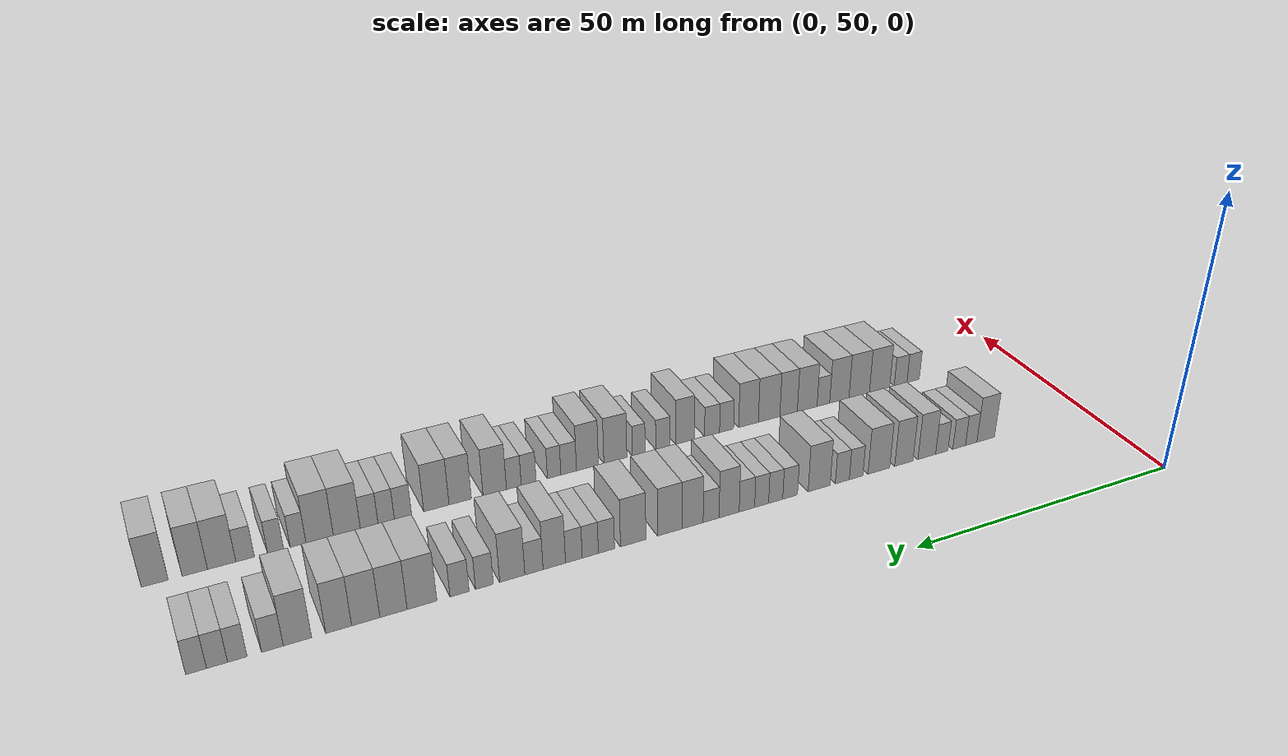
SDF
<sdf version="1.6">
 <world name="default">
  <model name="building_74">
   <static>1</static>
   <pose>25.0000 72.0073 0 0.000000 0.000000 0.000000</pose>
   <link name="link">
    <pose>0 0 4.50 0 0 0</pose>
    <collision name="collision"><geometry><box><size>10.0000 3.7636 9.0000</size></box></geometry></collision>
    <visual name="visual">
     <cast_shadows>0</cast_shadows>
     <geometry><box><size>10.0000 3.7636 9.0000</size></box></geometry>
     <material>
      <script>
       <uri>model://HANNAS_wall/materials/scripts</uri>
       <uri>model://HANNAS_wall/materials/textures</uri>
       <name>vrc/HANNAS_wall</name>
      </script>
     </material>
    </visual>
   </link>
  </model>
  <model name="building_75">
   <static>1</static>
   <pose>25.0000 75.0960 0 0.000000 0.000000 0.000000</pose>
   <link name="link">
    <pose>0 0 3.00 0 0 0</pose>
    <collision name="collision"><geometry><box><size>10.0000 2.4137 6.0000</size></box></geometry></collision>
    <visual name="visual">
     <cast_shadows>0</cast_shadows>
     <geometry><box><size>10.0000 2.4137 6.0000</size></box></geometry>
     <material>
      <script>
       <uri>model://HANNAS_wall/materials/scripts</uri>
       <uri>model://HANNAS_wall/materials/textures</uri>
       <name>vrc/HANNAS_wall</name>
      </script>
     </material>
    </visual>
   </link>
  </model>
  <model name="building_76">
   <static>1</static>
   <pose>25.0000 77.6367 0 0.000000 0.000000 0.000000</pose>
   <link name="link">
    <pose>0 0 3.00 0 0 0</pose>
    <collision name="collision"><geometry><box><size>10.0000 2.6678 6.0000</size></box></geometry></collision>
    <visual name="visual">
     <cast_shadows>0</cast_shadows>
     <geometry><box><size>10.0000 2.6678 6.0000</size></box></geometry>
     <material>
      <script>
       <uri>model://HANNAS_wall/materials/scripts</uri>
       <uri>model://HANNAS_wall/materials/textures</uri>
       <name>vrc/HANNAS_wall</name>
      </script>
     </material>
    </visual>
   </link>
  </model>
  <model name="building_77">
   <static>1</static>
   <pose>25.0000 81.2467 0 0.000000 0.000000 0.000000</pose>
   <link name="link">
    <pose>0 0 3.00 0 0 0</pose>
    <collision name="collision"><geometry><box><size>10.0000 2.5522 6.0000</size></box></geometry></collision>
    <visual name="visual">
     <cast_shadows>0</cast_shadows>
     <geometry><box><size>10.0000 2.5522 6.0000</size></box></geometry>
     <material>
      <script>
       <uri>model://HANNAS_wall/materials/scripts</uri>
       <uri>model://HANNAS_wall/materials/textures</uri>
       <name>vrc/HANNAS_wall</name>
      </script>
     </material>
    </visual>
   </link>
  </model>
  <model name="building_78">
   <static>1</static>
   <pose>25.0000 84.3464 0 0.000000 0.000000 0.000000</pose>
   <link name="link">
    <pose>0 0 4.50 0 0 0</pose>
    <collision name="collision"><geometry><box><size>10.0000 3.6470 9.0000</size></box></geometry></collision>
    <visual name="visual">
     <cast_shadows>0</cast_shadows>
     <geometry><box><size>10.0000 3.6470 9.0000</size></box></geometry>
     <material>
      <script>
       <uri>model://HANNAS_wall/materials/scripts</uri>
       <uri>model://HANNAS_wall/materials/textures</uri>
       <name>vrc/HANNAS_wall</name>
      </script>
     </material>
    </visual>
   </link>
  </model>
  <model name="building_79">
   <static>1</static>
   <pose>25.0000 89.0139 0 0.000000 0.000000 0.000000</pose>
   <link name="link">
    <pose>0 0 4.50 0 0 0</pose>
    <collision name="collision"><geometry><box><size>10.0000 3.6879 9.0000</size></box></geometry></collision>
    <visual name="visual">
     <cast_shadows>0</cast_shadows>
     <geometry><box><size>10.0000 3.6879 9.0000</size></box></geometry>
     <material>
      <script>
       <uri>model://HANNAS_wall/materials/scripts</uri>
       <uri>model://HANNAS_wall/materials/textures</uri>
       <name>vrc/HANNAS_wall</name>
      </script>
     </material>
    </visual>
   </link>
  </model>
  <model name="building_80">
   <static>1</static>
   <pose>25.0000 94.0215 0 0.000000 0.000000 0.000000</pose>
   <link name="link">
    <pose>0 0 4.50 0 0 0</pose>
    <collision name="collision"><geometry><box><size>10.0000 4.3273 9.0000</size></box></geometry></collision>
    <visual name="visual">
     <cast_shadows>0</cast_shadows>
     <geometry><box><size>10.0000 4.3273 9.0000</size></box></geometry>
     <material>
      <script>
       <uri>model://HANNAS_wall/materials/scripts</uri>
       <uri>model://HANNAS_wall/materials/textures</uri>
       <name>vrc/HANNAS_wall</name>
      </script>
     </material>
    </visual>
   </link>
  </model>
  <model name="building_81">
   <static>1</static>
   <pose>25.0000 98.5143 0 0.000000 0.000000 0.000000</pose>
   <link name="link">
    <pose>0 0 3.00 0 0 0</pose>
    <collision name="collision"><geometry><box><size>10.0000 2.6583 6.0000</size></box></geometry></collision>
    <visual name="visual">
     <cast_shadows>0</cast_shadows>
     <geometry><box><size>10.0000 2.6583 6.0000</size></box></geometry>
     <material>
      <script>
       <uri>model://HANNAS_wall/materials/scripts</uri>
       <uri>model://HANNAS_wall/materials/textures</uri>
       <name>vrc/HANNAS_wall</name>
      </script>
     </material>
    </visual>
   </link>
  </model>
  <model name="building_82">
   <static>1</static>
   <pose>25.0000 101.2022 0 0.000000 0.000000 0.000000</pose>
   <link name="link">
    <pose>0 0 3.00 0 0 0</pose>
    <collision name="collision"><geometry><box><size>10.0000 2.7175 6.0000</size></box></geometry></collision>
    <visual name="visual">
     <cast_shadows>0</cast_shadows>
     <geometry><box><size>10.0000 2.7175 6.0000</size></box></geometry>
     <material>
      <script>
       <uri>model://HANNAS_wall/materials/scripts</uri>
       <uri>model://HANNAS_wall/materials/textures</uri>
       <name>vrc/HANNAS_wall</name>
      </script>
     </material>
    </visual>
   </link>
  </model>
  <model name="building_83">
   <static>1</static>
   <pose>25.0000 105.6680 0 0.000000 0.000000 0.000000</pose>
   <link name="link">
    <pose>0 0 4.50 0 0 0</pose>
    <collision name="collision"><geometry><box><size>10.0000 4.2141 9.0000</size></box></geometry></collision>
    <visual name="visual">
     <cast_shadows>0</cast_shadows>
     <geometry><box><size>10.0000 4.2141 9.0000</size></box></geometry>
     <material>
      <script>
       <uri>model://HANNAS_wall/materials/scripts</uri>
       <uri>model://HANNAS_wall/materials/textures</uri>
       <name>vrc/HANNAS_wall</name>
      </script>
     </material>
    </visual>
   </link>
  </model>
  <model name="building_84">
   <static>1</static>
   <pose>25.0000 111.1641 0 0.000000 0.000000 0.000000</pose>
   <link name="link">
    <pose>0 0 3.00 0 0 0</pose>
    <collision name="collision"><geometry><box><size>10.0000 2.7781 6.0000</size></box></geometry></collision>
    <visual name="visual">
     <cast_shadows>0</cast_shadows>
     <geometry><box><size>10.0000 2.7781 6.0000</size></box></geometry>
     <material>
      <script>
       <uri>model://HANNAS_wall/materials/scripts</uri>
       <uri>model://HANNAS_wall/materials/textures</uri>
       <name>vrc/HANNAS_wall</name>
      </script>
     </material>
    </visual>
   </link>
  </model>
  <model name="building_85">
   <static>1</static>
   <pose>25.0000 113.8663 0 0.000000 0.000000 0.000000</pose>
   <link name="link">
    <pose>0 0 3.00 0 0 0</pose>
    <collision name="collision"><geometry><box><size>10.0000 2.6263 6.0000</size></box></geometry></collision>
    <visual name="visual">
     <cast_shadows>0</cast_shadows>
     <geometry><box><size>10.0000 2.6263 6.0000</size></box></geometry>
     <material>
      <script>
       <uri>model://HANNAS_wall/materials/scripts</uri>
       <uri>model://HANNAS_wall/materials/textures</uri>
       <name>vrc/HANNAS_wall</name>
      </script>
     </material>
    </visual>
   </link>
  </model>
  <model name="building_86">
   <static>1</static>
   <pose>25.0000 116.4691 0 0.000000 0.000000 0.000000</pose>
   <link name="link">
    <pose>0 0 3.00 0 0 0</pose>
    <collision name="collision"><geometry><box><size>10.0000 2.5793 6.0000</size></box></geometry></collision>
    <visual name="visual">
     <cast_shadows>0</cast_shadows>
     <geometry><box><size>10.0000 2.5793 6.0000</size></box></geometry>
     <material>
      <script>
       <uri>model://HANNAS_wall/materials/scripts</uri>
       <uri>model://HANNAS_wall/materials/textures</uri>
       <name>vrc/HANNAS_wall</name>
      </script>
     </material>
    </visual>
   </link>
  </model>
  <model name="building_87">
   <static>1</static>
   <pose>25.0000 119.1699 0 0.000000 0.000000 0.000000</pose>
   <link name="link">
    <pose>0 0 3.00 0 0 0</pose>
    <collision name="collision"><geometry><box><size>10.0000 2.8221 6.0000</size></box></geometry></collision>
    <visual name="visual">
     <cast_shadows>0</cast_shadows>
     <geometry><box><size>10.0000 2.8221 6.0000</size></box></geometry>
     <material>
      <script>
       <uri>model://HANNAS_wall/materials/scripts</uri>
       <uri>model://HANNAS_wall/materials/textures</uri>
       <name>vrc/HANNAS_wall</name>
      </script>
     </material>
    </visual>
   </link>
  </model>
  <model name="building_88">
   <static>1</static>
   <pose>25.0000 122.3993 0 0.000000 0.000000 0.000000</pose>
   <link name="link">
    <pose>0 0 4.50 0 0 0</pose>
    <collision name="collision"><geometry><box><size>10.0000 3.6368 9.0000</size></box></geometry></collision>
    <visual name="visual">
     <cast_shadows>0</cast_shadows>
     <geometry><box><size>10.0000 3.6368 9.0000</size></box></geometry>
     <material>
      <script>
       <uri>model://HANNAS_wall/materials/scripts</uri>
       <uri>model://HANNAS_wall/materials/textures</uri>
       <name>vrc/HANNAS_wall</name>
      </script>
     </material>
    </visual>
   </link>
  </model>
  <model name="building_89">
   <static>1</static>
   <pose>25.0000 125.6433 0 0.000000 0.000000 0.000000</pose>
   <link name="link">
    <pose>0 0 3.00 0 0 0</pose>
    <collision name="collision"><geometry><box><size>10.0000 2.8510 6.0000</size></box></geometry></collision>
    <visual name="visual">
     <cast_shadows>0</cast_shadows>
     <geometry><box><size>10.0000 2.8510 6.0000</size></box></geometry>
     <material>
      <script>
       <uri>model://HANNAS_wall/materials/scripts</uri>
       <uri>model://HANNAS_wall/materials/textures</uri>
       <name>vrc/HANNAS_wall</name>
      </script>
     </material>
    </visual>
   </link>
  </model>
  <model name="building_90">
   <static>1</static>
   <pose>25.0000 128.9204 0 0.000000 0.000000 0.000000</pose>
   <link name="link">
    <pose>0 0 4.50 0 0 0</pose>
    <collision name="collision"><geometry><box><size>10.0000 3.7033 9.0000</size></box></geometry></collision>
    <visual name="visual">
     <cast_shadows>0</cast_shadows>
     <geometry><box><size>10.0000 3.7033 9.0000</size></box></geometry>
     <material>
      <script>
       <uri>model://HANNAS_wall/materials/scripts</uri>
       <uri>model://HANNAS_wall/materials/textures</uri>
       <name>vrc/HANNAS_wall</name>
      </script>
     </material>
    </visual>
   </link>
  </model>
  <model name="building_91">
   <static>1</static>
   <pose>25.0000 132.9201 0 0.000000 0.000000 0.000000</pose>
   <link name="link">
    <pose>0 0 4.50 0 0 0</pose>
    <collision name="collision"><geometry><box><size>10.0000 4.2961 9.0000</size></box></geometry></collision>
    <visual name="visual">
     <cast_shadows>0</cast_shadows>
     <geometry><box><size>10.0000 4.2961 9.0000</size></box></geometry>
     <material>
      <script>
       <uri>model://HANNAS_wall/materials/scripts</uri>
       <uri>model://HANNAS_wall/materials/textures</uri>
       <name>vrc/HANNAS_wall</name>
      </script>
     </material>
    </visual>
   </link>
  </model>
  <model name="building_92">
   <static>1</static>
   <pose>25.0000 139.2337 0 0.000000 0.000000 0.000000</pose>
   <link name="link">
    <pose>0 0 4.50 0 0 0</pose>
    <collision name="collision"><geometry><box><size>10.0000 4.3310 9.0000</size></box></geometry></collision>
    <visual name="visual">
     <cast_shadows>0</cast_shadows>
     <geometry><box><size>10.0000 4.3310 9.0000</size></box></geometry>
     <material>
      <script>
       <uri>model://HANNAS_wall/materials/scripts</uri>
       <uri>model://HANNAS_wall/materials/textures</uri>
       <name>vrc/HANNAS_wall</name>
      </script>
     </material>
    </visual>
   </link>
  </model>
  <model name="building_93">
   <static>1</static>
   <pose>25.0000 143.7531 0 0.000000 0.000000 0.000000</pose>
   <link name="link">
    <pose>0 0 3.00 0 0 0</pose>
    <collision name="collision"><geometry><box><size>10.0000 2.7078 6.0000</size></box></geometry></collision>
    <visual name="visual">
     <cast_shadows>0</cast_shadows>
     <geometry><box><size>10.0000 2.7078 6.0000</size></box></geometry>
     <material>
      <script>
       <uri>model://HANNAS_wall/materials/scripts</uri>
       <uri>model://HANNAS_wall/materials/textures</uri>
       <name>vrc/HANNAS_wall</name>
      </script>
     </material>
    </visual>
   </link>
  </model>
  <model name="building_94">
   <static>1</static>
   <pose>25.0000 146.4467 0 0.000000 0.000000 0.000000</pose>
   <link name="link">
    <pose>0 0 3.00 0 0 0</pose>
    <collision name="collision"><geometry><box><size>10.0000 2.6794 6.0000</size></box></geometry></collision>
    <visual name="visual">
     <cast_shadows>0</cast_shadows>
     <geometry><box><size>10.0000 2.6794 6.0000</size></box></geometry>
     <material>
      <script>
       <uri>model://HANNAS_wall/materials/scripts</uri>
       <uri>model://HANNAS_wall/materials/textures</uri>
       <name>vrc/HANNAS_wall</name>
      </script>
     </material>
    </visual>
   </link>
  </model>
  <model name="building_95">
   <static>1</static>
   <pose>25.0000 149.1599 0 0.000000 0.000000 0.000000</pose>
   <link name="link">
    <pose>0 0 3.00 0 0 0</pose>
    <collision name="collision"><geometry><box><size>10.0000 2.7469 6.0000</size></box></geometry></collision>
    <visual name="visual">
     <cast_shadows>0</cast_shadows>
     <geometry><box><size>10.0000 2.7469 6.0000</size></box></geometry>
     <material>
      <script>
       <uri>model://HANNAS_wall/materials/scripts</uri>
       <uri>model://HANNAS_wall/materials/textures</uri>
       <name>vrc/HANNAS_wall</name>
      </script>
     </material>
    </visual>
   </link>
  </model>
  <model name="building_96">
   <static>1</static>
   <pose>25.0000 152.3579 0 0.000000 0.000000 0.000000</pose>
   <link name="link">
    <pose>0 0 4.50 0 0 0</pose>
    <collision name="collision"><geometry><box><size>10.0000 3.6492 9.0000</size></box></geometry></collision>
    <visual name="visual">
     <cast_shadows>0</cast_shadows>
     <geometry><box><size>10.0000 3.6492 9.0000</size></box></geometry>
     <material>
      <script>
       <uri>model://HANNAS_wall/materials/scripts</uri>
       <uri>model://HANNAS_wall/materials/textures</uri>
       <name>vrc/HANNAS_wall</name>
      </script>
     </material>
    </visual>
   </link>
  </model>
  <model name="building_97">
   <static>1</static>
   <pose>25.0000 155.6437 0 0.000000 0.000000 0.000000</pose>
   <link name="link">
    <pose>0 0 3.00 0 0 0</pose>
    <collision name="collision"><geometry><box><size>10.0000 2.9223 6.0000</size></box></geometry></collision>
    <visual name="visual">
     <cast_shadows>0</cast_shadows>
     <geometry><box><size>10.0000 2.9223 6.0000</size></box></geometry>
     <material>
      <script>
       <uri>model://HANNAS_wall/materials/scripts</uri>
       <uri>model://HANNAS_wall/materials/textures</uri>
       <name>vrc/HANNAS_wall</name>
      </script>
     </material>
    </visual>
   </link>
  </model>
  <model name="building_98">
   <static>1</static>
   <pose>25.0000 159.1032 0 0.000000 0.000000 0.000000</pose>
   <link name="link">
    <pose>0 0 4.50 0 0 0</pose>
    <collision name="collision"><geometry><box><size>10.0000 3.9967 9.0000</size></box></geometry></collision>
    <visual name="visual">
     <cast_shadows>0</cast_shadows>
     <geometry><box><size>10.0000 3.9967 9.0000</size></box></geometry>
     <material>
      <script>
       <uri>model://HANNAS_wall/materials/scripts</uri>
       <uri>model://HANNAS_wall/materials/textures</uri>
       <name>vrc/HANNAS_wall</name>
      </script>
     </material>
    </visual>
   </link>
  </model>
  <model name="building_99">
   <static>1</static>
   <pose>25.0000 163.4852 0 0.000000 0.000000 0.000000</pose>
   <link name="link">
    <pose>0 0 3.00 0 0 0</pose>
    <collision name="collision"><geometry><box><size>10.0000 2.7672 6.0000</size></box></geometry></collision>
    <visual name="visual">
     <cast_shadows>0</cast_shadows>
     <geometry><box><size>10.0000 2.7672 6.0000</size></box></geometry>
     <material>
      <script>
       <uri>model://HANNAS_wall/materials/scripts</uri>
       <uri>model://HANNAS_wall/materials/textures</uri>
       <name>vrc/HANNAS_wall</name>
      </script>
     </material>
    </visual>
   </link>
  </model>
  <model name="building_100">
   <static>1</static>
   <pose>25.0000 167.3398 0 0.000000 0.000000 0.000000</pose>
   <link name="link">
    <pose>0 0 3.00 0 0 0</pose>
    <collision name="collision"><geometry><box><size>10.0000 2.9420 6.0000</size></box></geometry></collision>
    <visual name="visual">
     <cast_shadows>0</cast_shadows>
     <geometry><box><size>10.0000 2.9420 6.0000</size></box></geometry>
     <material>
      <script>
       <uri>model://HANNAS_wall/materials/scripts</uri>
       <uri>model://HANNAS_wall/materials/textures</uri>
       <name>vrc/HANNAS_wall</name>
      </script>
     </material>
    </visual>
   </link>
  </model>
  <model name="building_101">
   <static>1</static>
   <pose>25.0000 173.0461 0 0.000000 0.000000 0.000000</pose>
   <link name="link">
    <pose>0 0 4.50 0 0 0</pose>
    <collision name="collision"><geometry><box><size>10.0000 4.4706 9.0000</size></box></geometry></collision>
    <visual name="visual">
     <cast_shadows>0</cast_shadows>
     <geometry><box><size>10.0000 4.4706 9.0000</size></box></geometry>
     <material>
      <script>
       <uri>model://HANNAS_wall/materials/scripts</uri>
       <uri>model://HANNAS_wall/materials/textures</uri>
       <name>vrc/HANNAS_wall</name>
      </script>
     </material>
    </visual>
   </link>
  </model>
  <model name="building_102">
   <static>1</static>
   <pose>25.0000 177.3038 0 0.000000 0.000000 0.000000</pose>
   <link name="link">
    <pose>0 0 4.50 0 0 0</pose>
    <collision name="collision"><geometry><box><size>10.0000 4.0450 9.0000</size></box></geometry></collision>
    <visual name="visual">
     <cast_shadows>0</cast_shadows>
     <geometry><box><size>10.0000 4.0450 9.0000</size></box></geometry>
     <material>
      <script>
       <uri>model://HANNAS_wall/materials/scripts</uri>
       <uri>model://HANNAS_wall/materials/textures</uri>
       <name>vrc/HANNAS_wall</name>
      </script>
     </material>
    </visual>
   </link>
  </model>
  <model name="building_103">
   <static>1</static>
   <pose>25.0000 181.3832 0 0.000000 0.000000 0.000000</pose>
   <link name="link">
    <pose>0 0 4.50 0 0 0</pose>
    <collision name="collision"><geometry><box><size>10.0000 4.1138 9.0000</size></box></geometry></collision>
    <visual name="visual">
     <cast_shadows>0</cast_shadows>
     <geometry><box><size>10.0000 4.1138 9.0000</size></box></geometry>
     <material>
      <script>
       <uri>model://HANNAS_wall/materials/scripts</uri>
       <uri>model://HANNAS_wall/materials/textures</uri>
       <name>vrc/HANNAS_wall</name>
      </script>
     </material>
    </visual>
   </link>
  </model>
  <model name="building_104">
   <static>1</static>
   <pose>25.0000 185.3058 0 0.000000 0.000000 0.000000</pose>
   <link name="link">
    <pose>0 0 4.50 0 0 0</pose>
    <collision name="collision"><geometry><box><size>10.0000 3.7315 9.0000</size></box></geometry></collision>
    <visual name="visual">
     <cast_shadows>0</cast_shadows>
     <geometry><box><size>10.0000 3.7315 9.0000</size></box></geometry>
     <material>
      <script>
       <uri>model://HANNAS_wall/materials/scripts</uri>
       <uri>model://HANNAS_wall/materials/textures</uri>
       <name>vrc/HANNAS_wall</name>
      </script>
     </material>
    </visual>
   </link>
  </model>
  <model name="building_105">
   <static>1</static>
   <pose>25.0000 191.1679 0 0.000000 0.000000 0.000000</pose>
   <link name="link">
    <pose>0 0 4.50 0 0 0</pose>
    <collision name="collision"><geometry><box><size>10.0000 3.9927 9.0000</size></box></geometry></collision>
    <visual name="visual">
     <cast_shadows>0</cast_shadows>
     <geometry><box><size>10.0000 3.9927 9.0000</size></box></geometry>
     <material>
      <script>
       <uri>model://HANNAS_wall/materials/scripts</uri>
       <uri>model://HANNAS_wall/materials/textures</uri>
       <name>vrc/HANNAS_wall</name>
      </script>
     </material>
    </visual>
   </link>
  </model>
  <model name="building_106">
   <static>1</static>
   <pose>25.0000 194.6616 0 0.000000 0.000000 0.000000</pose>
   <link name="link">
    <pose>0 0 3.00 0 0 0</pose>
    <collision name="collision"><geometry><box><size>10.0000 2.9947 6.0000</size></box></geometry></collision>
    <visual name="visual">
     <cast_shadows>0</cast_shadows>
     <geometry><box><size>10.0000 2.9947 6.0000</size></box></geometry>
     <material>
      <script>
       <uri>model://HANNAS_wall/materials/scripts</uri>
       <uri>model://HANNAS_wall/materials/textures</uri>
       <name>vrc/HANNAS_wall</name>
      </script>
     </material>
    </visual>
   </link>
  </model>
  <model name="building_107">
   <static>1</static>
   <pose>25.0000 199.4843 0 0.000000 0.000000 0.000000</pose>
   <link name="link">
    <pose>0 0 3.00 0 0 0</pose>
    <collision name="collision"><geometry><box><size>10.0000 2.6508 6.0000</size></box></geometry></collision>
    <visual name="visual">
     <cast_shadows>0</cast_shadows>
     <geometry><box><size>10.0000 2.6508 6.0000</size></box></geometry>
     <material>
      <script>
       <uri>model://HANNAS_wall/materials/scripts</uri>
       <uri>model://HANNAS_wall/materials/textures</uri>
       <name>vrc/HANNAS_wall</name>
      </script>
     </material>
    </visual>
   </link>
  </model>
  <model name="building_108">
   <static>1</static>
   <pose>25.0000 202.2249 0 0.000000 0.000000 0.000000</pose>
   <link name="link">
    <pose>0 0 3.00 0 0 0</pose>
    <collision name="collision"><geometry><box><size>10.0000 2.8304 6.0000</size></box></geometry></collision>
    <visual name="visual">
     <cast_shadows>0</cast_shadows>
     <geometry><box><size>10.0000 2.8304 6.0000</size></box></geometry>
     <material>
      <script>
       <uri>model://HANNAS_wall/materials/scripts</uri>
       <uri>model://HANNAS_wall/materials/textures</uri>
       <name>vrc/HANNAS_wall</name>
      </script>
     </material>
    </visual>
   </link>
  </model>
  <model name="building_109">
   <static>1</static>
   <pose>25.0000 205.0284 0 0.000000 0.000000 0.000000</pose>
   <link name="link">
    <pose>0 0 3.00 0 0 0</pose>
    <collision name="collision"><geometry><box><size>10.0000 2.7765 6.0000</size></box></geometry></collision>
    <visual name="visual">
     <cast_shadows>0</cast_shadows>
     <geometry><box><size>10.0000 2.7765 6.0000</size></box></geometry>
     <material>
      <script>
       <uri>model://HANNAS_wall/materials/scripts</uri>
       <uri>model://HANNAS_wall/materials/textures</uri>
       <name>vrc/HANNAS_wall</name>
      </script>
     </material>
    </visual>
   </link>
  </model>
  <model name="building_179">
   <static>1</static>
   <pose>47.0000 72.0780 0 0.000000 0.000000 0.000000</pose>
   <link name="link">
    <pose>0 0 3.00 0 0 0</pose>
    <collision name="collision"><geometry><box><size>10.0000 2.7419 6.0000</size></box></geometry></collision>
    <visual name="visual">
     <cast_shadows>0</cast_shadows>
     <geometry><box><size>10.0000 2.7419 6.0000</size></box></geometry>
     <material>
      <script>
       <uri>model://HANNAS_wall/materials/scripts</uri>
       <uri>model://HANNAS_wall/materials/textures</uri>
       <name>vrc/HANNAS_wall</name>
      </script>
     </material>
    </visual>
   </link>
  </model>
  <model name="building_180">
   <static>1</static>
   <pose>47.0000 74.8662 0 0.000000 0.000000 0.000000</pose>
   <link name="link">
    <pose>0 0 3.00 0 0 0</pose>
    <collision name="collision"><geometry><box><size>10.0000 2.8345 6.0000</size></box></geometry></collision>
    <visual name="visual">
     <cast_shadows>0</cast_shadows>
     <geometry><box><size>10.0000 2.8345 6.0000</size></box></geometry>
     <material>
      <script>
       <uri>model://HANNAS_wall/materials/scripts</uri>
       <uri>model://HANNAS_wall/materials/textures</uri>
       <name>vrc/HANNAS_wall</name>
      </script>
     </material>
    </visual>
   </link>
  </model>
  <model name="building_181">
   <static>1</static>
   <pose>47.0000 79.5007 0 0.000000 0.000000 0.000000</pose>
   <link name="link">
    <pose>0 0 4.50 0 0 0</pose>
    <collision name="collision"><geometry><box><size>10.0000 4.4345 9.0000</size></box></geometry></collision>
    <visual name="visual">
     <cast_shadows>0</cast_shadows>
     <geometry><box><size>10.0000 4.4345 9.0000</size></box></geometry>
     <material>
      <script>
       <uri>model://HANNAS_wall/materials/scripts</uri>
       <uri>model://HANNAS_wall/materials/textures</uri>
       <name>vrc/HANNAS_wall</name>
      </script>
     </material>
    </visual>
   </link>
  </model>
  <model name="building_182">
   <static>1</static>
   <pose>47.0000 83.9176 0 0.000000 0.000000 0.000000</pose>
   <link name="link">
    <pose>0 0 4.50 0 0 0</pose>
    <collision name="collision"><geometry><box><size>10.0000 4.3993 9.0000</size></box></geometry></collision>
    <visual name="visual">
     <cast_shadows>0</cast_shadows>
     <geometry><box><size>10.0000 4.3993 9.0000</size></box></geometry>
     <material>
      <script>
       <uri>model://HANNAS_wall/materials/scripts</uri>
       <uri>model://HANNAS_wall/materials/textures</uri>
       <name>vrc/HANNAS_wall</name>
      </script>
     </material>
    </visual>
   </link>
  </model>
  <model name="building_183">
   <static>1</static>
   <pose>47.0000 88.1711 0 0.000000 0.000000 0.000000</pose>
   <link name="link">
    <pose>0 0 4.50 0 0 0</pose>
    <collision name="collision"><geometry><box><size>10.0000 4.1076 9.0000</size></box></geometry></collision>
    <visual name="visual">
     <cast_shadows>0</cast_shadows>
     <geometry><box><size>10.0000 4.1076 9.0000</size></box></geometry>
     <material>
      <script>
       <uri>model://HANNAS_wall/materials/scripts</uri>
       <uri>model://HANNAS_wall/materials/textures</uri>
       <name>vrc/HANNAS_wall</name>
      </script>
     </material>
    </visual>
   </link>
  </model>
  <model name="building_184">
   <static>1</static>
   <pose>47.0000 91.5552 0 0.000000 0.000000 0.000000</pose>
   <link name="link">
    <pose>0 0 3.00 0 0 0</pose>
    <collision name="collision"><geometry><box><size>10.0000 2.6606 6.0000</size></box></geometry></collision>
    <visual name="visual">
     <cast_shadows>0</cast_shadows>
     <geometry><box><size>10.0000 2.6606 6.0000</size></box></geometry>
     <material>
      <script>
       <uri>model://HANNAS_wall/materials/scripts</uri>
       <uri>model://HANNAS_wall/materials/textures</uri>
       <name>vrc/HANNAS_wall</name>
      </script>
     </material>
    </visual>
   </link>
  </model>
  <model name="building_185">
   <static>1</static>
   <pose>47.0000 94.9431 0 0.000000 0.000000 0.000000</pose>
   <link name="link">
    <pose>0 0 4.50 0 0 0</pose>
    <collision name="collision"><geometry><box><size>10.0000 4.1152 9.0000</size></box></geometry></collision>
    <visual name="visual">
     <cast_shadows>0</cast_shadows>
     <geometry><box><size>10.0000 4.1152 9.0000</size></box></geometry>
     <material>
      <script>
       <uri>model://HANNAS_wall/materials/scripts</uri>
       <uri>model://HANNAS_wall/materials/textures</uri>
       <name>vrc/HANNAS_wall</name>
      </script>
     </material>
    </visual>
   </link>
  </model>
  <model name="building_186">
   <static>1</static>
   <pose>47.0000 98.8052 0 0.000000 0.000000 0.000000</pose>
   <link name="link">
    <pose>0 0 4.50 0 0 0</pose>
    <collision name="collision"><geometry><box><size>10.0000 3.6090 9.0000</size></box></geometry></collision>
    <visual name="visual">
     <cast_shadows>0</cast_shadows>
     <geometry><box><size>10.0000 3.6090 9.0000</size></box></geometry>
     <material>
      <script>
       <uri>model://HANNAS_wall/materials/scripts</uri>
       <uri>model://HANNAS_wall/materials/textures</uri>
       <name>vrc/HANNAS_wall</name>
      </script>
     </material>
    </visual>
   </link>
  </model>
  <model name="building_187">
   <static>1</static>
   <pose>47.0000 102.7982 0 0.000000 0.000000 0.000000</pose>
   <link name="link">
    <pose>0 0 4.50 0 0 0</pose>
    <collision name="collision"><geometry><box><size>10.0000 4.3771 9.0000</size></box></geometry></collision>
    <visual name="visual">
     <cast_shadows>0</cast_shadows>
     <geometry><box><size>10.0000 4.3771 9.0000</size></box></geometry>
     <material>
      <script>
       <uri>model://HANNAS_wall/materials/scripts</uri>
       <uri>model://HANNAS_wall/materials/textures</uri>
       <name>vrc/HANNAS_wall</name>
      </script>
     </material>
    </visual>
   </link>
  </model>
  <model name="building_188">
   <static>1</static>
   <pose>47.0000 106.9682 0 0.000000 0.000000 0.000000</pose>
   <link name="link">
    <pose>0 0 4.50 0 0 0</pose>
    <collision name="collision"><geometry><box><size>10.0000 3.9629 9.0000</size></box></geometry></collision>
    <visual name="visual">
     <cast_shadows>0</cast_shadows>
     <geometry><box><size>10.0000 3.9629 9.0000</size></box></geometry>
     <material>
      <script>
       <uri>model://HANNAS_wall/materials/scripts</uri>
       <uri>model://HANNAS_wall/materials/textures</uri>
       <name>vrc/HANNAS_wall</name>
      </script>
     </material>
    </visual>
   </link>
  </model>
  <model name="building_189">
   <static>1</static>
   <pose>47.0000 111.3438 0 0.000000 0.000000 0.000000</pose>
   <link name="link">
    <pose>0 0 3.00 0 0 0</pose>
    <collision name="collision"><geometry><box><size>10.0000 2.7883 6.0000</size></box></geometry></collision>
    <visual name="visual">
     <cast_shadows>0</cast_shadows>
     <geometry><box><size>10.0000 2.7883 6.0000</size></box></geometry>
     <material>
      <script>
       <uri>model://HANNAS_wall/materials/scripts</uri>
       <uri>model://HANNAS_wall/materials/textures</uri>
       <name>vrc/HANNAS_wall</name>
      </script>
     </material>
    </visual>
   </link>
  </model>
  <model name="building_190">
   <static>1</static>
   <pose>47.0000 114.2129 0 0.000000 0.000000 0.000000</pose>
   <link name="link">
    <pose>0 0 3.00 0 0 0</pose>
    <collision name="collision"><geometry><box><size>10.0000 2.9499 6.0000</size></box></geometry></collision>
    <visual name="visual">
     <cast_shadows>0</cast_shadows>
     <geometry><box><size>10.0000 2.9499 6.0000</size></box></geometry>
     <material>
      <script>
       <uri>model://HANNAS_wall/materials/scripts</uri>
       <uri>model://HANNAS_wall/materials/textures</uri>
       <name>vrc/HANNAS_wall</name>
      </script>
     </material>
    </visual>
   </link>
  </model>
  <model name="building_191">
   <static>1</static>
   <pose>47.0000 119.5002 0 0.000000 0.000000 0.000000</pose>
   <link name="link">
    <pose>0 0 4.50 0 0 0</pose>
    <collision name="collision"><geometry><box><size>10.0000 3.6246 9.0000</size></box></geometry></collision>
    <visual name="visual">
     <cast_shadows>0</cast_shadows>
     <geometry><box><size>10.0000 3.6246 9.0000</size></box></geometry>
     <material>
      <script>
       <uri>model://HANNAS_wall/materials/scripts</uri>
       <uri>model://HANNAS_wall/materials/textures</uri>
       <name>vrc/HANNAS_wall</name>
      </script>
     </material>
    </visual>
   </link>
  </model>
  <model name="building_192">
   <static>1</static>
   <pose>47.0000 123.7065 0 0.000000 0.000000 0.000000</pose>
   <link name="link">
    <pose>0 0 3.00 0 0 0</pose>
    <collision name="collision"><geometry><box><size>10.0000 2.7880 6.0000</size></box></geometry></collision>
    <visual name="visual">
     <cast_shadows>0</cast_shadows>
     <geometry><box><size>10.0000 2.7880 6.0000</size></box></geometry>
     <material>
      <script>
       <uri>model://HANNAS_wall/materials/scripts</uri>
       <uri>model://HANNAS_wall/materials/textures</uri>
       <name>vrc/HANNAS_wall</name>
      </script>
     </material>
    </visual>
   </link>
  </model>
  <model name="building_193">
   <static>1</static>
   <pose>47.0000 128.3127 0 0.000000 0.000000 0.000000</pose>
   <link name="link">
    <pose>0 0 3.00 0 0 0</pose>
    <collision name="collision"><geometry><box><size>10.0000 2.4245 6.0000</size></box></geometry></collision>
    <visual name="visual">
     <cast_shadows>0</cast_shadows>
     <geometry><box><size>10.0000 2.4245 6.0000</size></box></geometry>
     <material>
      <script>
       <uri>model://HANNAS_wall/materials/scripts</uri>
       <uri>model://HANNAS_wall/materials/textures</uri>
       <name>vrc/HANNAS_wall</name>
      </script>
     </material>
    </visual>
   </link>
  </model>
  <model name="building_194">
   <static>1</static>
   <pose>47.0000 132.6508 0 0.000000 0.000000 0.000000</pose>
   <link name="link">
    <pose>0 0 4.50 0 0 0</pose>
    <collision name="collision"><geometry><box><size>10.0000 4.2517 9.0000</size></box></geometry></collision>
    <visual name="visual">
     <cast_shadows>0</cast_shadows>
     <geometry><box><size>10.0000 4.2517 9.0000</size></box></geometry>
     <material>
      <script>
       <uri>model://HANNAS_wall/materials/scripts</uri>
       <uri>model://HANNAS_wall/materials/textures</uri>
       <name>vrc/HANNAS_wall</name>
      </script>
     </material>
    </visual>
   </link>
  </model>
  <model name="building_195">
   <static>1</static>
   <pose>47.0000 137.7761 0 0.000000 0.000000 0.000000</pose>
   <link name="link">
    <pose>0 0 4.50 0 0 0</pose>
    <collision name="collision"><geometry><box><size>10.0000 3.9988 9.0000</size></box></geometry></collision>
    <visual name="visual">
     <cast_shadows>0</cast_shadows>
     <geometry><box><size>10.0000 3.9988 9.0000</size></box></geometry>
     <material>
      <script>
       <uri>model://HANNAS_wall/materials/scripts</uri>
       <uri>model://HANNAS_wall/materials/textures</uri>
       <name>vrc/HANNAS_wall</name>
      </script>
     </material>
    </visual>
   </link>
  </model>
  <model name="building_196">
   <static>1</static>
   <pose>47.0000 141.1832 0 0.000000 0.000000 0.000000</pose>
   <link name="link">
    <pose>0 0 3.00 0 0 0</pose>
    <collision name="collision"><geometry><box><size>10.0000 2.8153 6.0000</size></box></geometry></collision>
    <visual name="visual">
     <cast_shadows>0</cast_shadows>
     <geometry><box><size>10.0000 2.8153 6.0000</size></box></geometry>
     <material>
      <script>
       <uri>model://HANNAS_wall/materials/scripts</uri>
       <uri>model://HANNAS_wall/materials/textures</uri>
       <name>vrc/HANNAS_wall</name>
      </script>
     </material>
    </visual>
   </link>
  </model>
  <model name="building_197">
   <static>1</static>
   <pose>47.0000 143.7919 0 0.000000 0.000000 0.000000</pose>
   <link name="link">
    <pose>0 0 3.00 0 0 0</pose>
    <collision name="collision"><geometry><box><size>10.0000 2.4022 6.0000</size></box></geometry></collision>
    <visual name="visual">
     <cast_shadows>0</cast_shadows>
     <geometry><box><size>10.0000 2.4022 6.0000</size></box></geometry>
     <material>
      <script>
       <uri>model://HANNAS_wall/materials/scripts</uri>
       <uri>model://HANNAS_wall/materials/textures</uri>
       <name>vrc/HANNAS_wall</name>
      </script>
     </material>
    </visual>
   </link>
  </model>
  <model name="building_198">
   <static>1</static>
   <pose>47.0000 148.3001 0 0.000000 0.000000 0.000000</pose>
   <link name="link">
    <pose>0 0 3.00 0 0 0</pose>
    <collision name="collision"><geometry><box><size>10.0000 2.6142 6.0000</size></box></geometry></collision>
    <visual name="visual">
     <cast_shadows>0</cast_shadows>
     <geometry><box><size>10.0000 2.6142 6.0000</size></box></geometry>
     <material>
      <script>
       <uri>model://HANNAS_wall/materials/scripts</uri>
       <uri>model://HANNAS_wall/materials/textures</uri>
       <name>vrc/HANNAS_wall</name>
      </script>
     </material>
    </visual>
   </link>
  </model>
  <model name="building_199">
   <static>1</static>
   <pose>47.0000 150.8954 0 0.000000 0.000000 0.000000</pose>
   <link name="link">
    <pose>0 0 3.00 0 0 0</pose>
    <collision name="collision"><geometry><box><size>10.0000 2.5764 6.0000</size></box></geometry></collision>
    <visual name="visual">
     <cast_shadows>0</cast_shadows>
     <geometry><box><size>10.0000 2.5764 6.0000</size></box></geometry>
     <material>
      <script>
       <uri>model://HANNAS_wall/materials/scripts</uri>
       <uri>model://HANNAS_wall/materials/textures</uri>
       <name>vrc/HANNAS_wall</name>
      </script>
     </material>
    </visual>
   </link>
  </model>
  <model name="building_200">
   <static>1</static>
   <pose>47.0000 154.2048 0 0.000000 0.000000 0.000000</pose>
   <link name="link">
    <pose>0 0 4.50 0 0 0</pose>
    <collision name="collision"><geometry><box><size>10.0000 4.0423 9.0000</size></box></geometry></collision>
    <visual name="visual">
     <cast_shadows>0</cast_shadows>
     <geometry><box><size>10.0000 4.0423 9.0000</size></box></geometry>
     <material>
      <script>
       <uri>model://HANNAS_wall/materials/scripts</uri>
       <uri>model://HANNAS_wall/materials/textures</uri>
       <name>vrc/HANNAS_wall</name>
      </script>
     </material>
    </visual>
   </link>
  </model>
  <model name="building_201">
   <static>1</static>
   <pose>47.0000 160.1108 0 0.000000 0.000000 0.000000</pose>
   <link name="link">
    <pose>0 0 4.50 0 0 0</pose>
    <collision name="collision"><geometry><box><size>10.0000 3.7698 9.0000</size></box></geometry></collision>
    <visual name="visual">
     <cast_shadows>0</cast_shadows>
     <geometry><box><size>10.0000 3.7698 9.0000</size></box></geometry>
     <material>
      <script>
       <uri>model://HANNAS_wall/materials/scripts</uri>
       <uri>model://HANNAS_wall/materials/textures</uri>
       <name>vrc/HANNAS_wall</name>
      </script>
     </material>
    </visual>
   </link>
  </model>
  <model name="building_202">
   <static>1</static>
   <pose>47.0000 164.1061 0 0.000000 0.000000 0.000000</pose>
   <link name="link">
    <pose>0 0 4.50 0 0 0</pose>
    <collision name="collision"><geometry><box><size>10.0000 4.2207 9.0000</size></box></geometry></collision>
    <visual name="visual">
     <cast_shadows>0</cast_shadows>
     <geometry><box><size>10.0000 4.2207 9.0000</size></box></geometry>
     <material>
      <script>
       <uri>model://HANNAS_wall/materials/scripts</uri>
       <uri>model://HANNAS_wall/materials/textures</uri>
       <name>vrc/HANNAS_wall</name>
      </script>
     </material>
    </visual>
   </link>
  </model>
  <model name="building_203">
   <static>1</static>
   <pose>47.0000 169.6261 0 0.000000 0.000000 0.000000</pose>
   <link name="link">
    <pose>0 0 3.00 0 0 0</pose>
    <collision name="collision"><geometry><box><size>10.0000 2.8194 6.0000</size></box></geometry></collision>
    <visual name="visual">
     <cast_shadows>0</cast_shadows>
     <geometry><box><size>10.0000 2.8194 6.0000</size></box></geometry>
     <material>
      <script>
       <uri>model://HANNAS_wall/materials/scripts</uri>
       <uri>model://HANNAS_wall/materials/textures</uri>
       <name>vrc/HANNAS_wall</name>
      </script>
     </material>
    </visual>
   </link>
  </model>
  <model name="building_204">
   <static>1</static>
   <pose>47.0000 172.3582 0 0.000000 0.000000 0.000000</pose>
   <link name="link">
    <pose>0 0 3.00 0 0 0</pose>
    <collision name="collision"><geometry><box><size>10.0000 2.6447 6.0000</size></box></geometry></collision>
    <visual name="visual">
     <cast_shadows>0</cast_shadows>
     <geometry><box><size>10.0000 2.6447 6.0000</size></box></geometry>
     <material>
      <script>
       <uri>model://HANNAS_wall/materials/scripts</uri>
       <uri>model://HANNAS_wall/materials/textures</uri>
       <name>vrc/HANNAS_wall</name>
      </script>
     </material>
    </visual>
   </link>
  </model>
  <model name="building_205">
   <static>1</static>
   <pose>47.0000 175.1078 0 0.000000 0.000000 0.000000</pose>
   <link name="link">
    <pose>0 0 3.00 0 0 0</pose>
    <collision name="collision"><geometry><box><size>10.0000 2.8546 6.0000</size></box></geometry></collision>
    <visual name="visual">
     <cast_shadows>0</cast_shadows>
     <geometry><box><size>10.0000 2.8546 6.0000</size></box></geometry>
     <material>
      <script>
       <uri>model://HANNAS_wall/materials/scripts</uri>
       <uri>model://HANNAS_wall/materials/textures</uri>
       <name>vrc/HANNAS_wall</name>
      </script>
     </material>
    </visual>
   </link>
  </model>
  <model name="building_206">
   <static>1</static>
   <pose>47.0000 178.6716 0 0.000000 0.000000 0.000000</pose>
   <link name="link">
    <pose>0 0 4.50 0 0 0</pose>
    <collision name="collision"><geometry><box><size>10.0000 4.2729 9.0000</size></box></geometry></collision>
    <visual name="visual">
     <cast_shadows>0</cast_shadows>
     <geometry><box><size>10.0000 4.2729 9.0000</size></box></geometry>
     <material>
      <script>
       <uri>model://HANNAS_wall/materials/scripts</uri>
       <uri>model://HANNAS_wall/materials/textures</uri>
       <name>vrc/HANNAS_wall</name>
      </script>
     </material>
    </visual>
   </link>
  </model>
  <model name="building_207">
   <static>1</static>
   <pose>47.0000 182.9487 0 0.000000 0.000000 0.000000</pose>
   <link name="link">
    <pose>0 0 4.50 0 0 0</pose>
    <collision name="collision"><geometry><box><size>10.0000 4.2814 9.0000</size></box></geometry></collision>
    <visual name="visual">
     <cast_shadows>0</cast_shadows>
     <geometry><box><size>10.0000 4.2814 9.0000</size></box></geometry>
     <material>
      <script>
       <uri>model://HANNAS_wall/materials/scripts</uri>
       <uri>model://HANNAS_wall/materials/textures</uri>
       <name>vrc/HANNAS_wall</name>
      </script>
     </material>
    </visual>
   </link>
  </model>
  <model name="building_208">
   <static>1</static>
   <pose>47.0000 186.3127 0 0.000000 0.000000 0.000000</pose>
   <link name="link">
    <pose>0 0 3.00 0 0 0</pose>
    <collision name="collision"><geometry><box><size>10.0000 2.4467 6.0000</size></box></geometry></collision>
    <visual name="visual">
     <cast_shadows>0</cast_shadows>
     <geometry><box><size>10.0000 2.4467 6.0000</size></box></geometry>
     <material>
      <script>
       <uri>model://HANNAS_wall/materials/scripts</uri>
       <uri>model://HANNAS_wall/materials/textures</uri>
       <name>vrc/HANNAS_wall</name>
      </script>
     </material>
    </visual>
   </link>
  </model>
  <model name="building_209">
   <static>1</static>
   <pose>47.0000 189.7572 0 0.000000 0.000000 0.000000</pose>
   <link name="link">
    <pose>0 0 3.00 0 0 0</pose>
    <collision name="collision"><geometry><box><size>10.0000 2.4423 6.0000</size></box></geometry></collision>
    <visual name="visual">
     <cast_shadows>0</cast_shadows>
     <geometry><box><size>10.0000 2.4423 6.0000</size></box></geometry>
     <material>
      <script>
       <uri>model://HANNAS_wall/materials/scripts</uri>
       <uri>model://HANNAS_wall/materials/textures</uri>
       <name>vrc/HANNAS_wall</name>
      </script>
     </material>
    </visual>
   </link>
  </model>
  <model name="building_210">
   <static>1</static>
   <pose>47.0000 194.3699 0 0.000000 0.000000 0.000000</pose>
   <link name="link">
    <pose>0 0 3.00 0 0 0</pose>
    <collision name="collision"><geometry><box><size>10.0000 2.7830 6.0000</size></box></geometry></collision>
    <visual name="visual">
     <cast_shadows>0</cast_shadows>
     <geometry><box><size>10.0000 2.7830 6.0000</size></box></geometry>
     <material>
      <script>
       <uri>model://HANNAS_wall/materials/scripts</uri>
       <uri>model://HANNAS_wall/materials/textures</uri>
       <name>vrc/HANNAS_wall</name>
      </script>
     </material>
    </visual>
   </link>
  </model>
  <model name="building_211">
   <static>1</static>
   <pose>47.0000 197.8557 0 0.000000 0.000000 0.000000</pose>
   <link name="link">
    <pose>0 0 4.50 0 0 0</pose>
    <collision name="collision"><geometry><box><size>10.0000 4.1887 9.0000</size></box></geometry></collision>
    <visual name="visual">
     <cast_shadows>0</cast_shadows>
     <geometry><box><size>10.0000 4.1887 9.0000</size></box></geometry>
     <material>
      <script>
       <uri>model://HANNAS_wall/materials/scripts</uri>
       <uri>model://HANNAS_wall/materials/textures</uri>
       <name>vrc/HANNAS_wall</name>
      </script>
     </material>
    </visual>
   </link>
  </model>
  <model name="building_212">
   <static>1</static>
   <pose>47.0000 201.8090 0 0.000000 0.000000 0.000000</pose>
   <link name="link">
    <pose>0 0 4.50 0 0 0</pose>
    <collision name="collision"><geometry><box><size>10.0000 3.7178 9.0000</size></box></geometry></collision>
    <visual name="visual">
     <cast_shadows>0</cast_shadows>
     <geometry><box><size>10.0000 3.7178 9.0000</size></box></geometry>
     <material>
      <script>
       <uri>model://HANNAS_wall/materials/scripts</uri>
       <uri>model://HANNAS_wall/materials/textures</uri>
       <name>vrc/HANNAS_wall</name>
      </script>
     </material>
    </visual>
   </link>
  </model>
  <model name="building_213">
   <static>1</static>
   <pose>47.0000 207.5998 0 0.000000 0.000000 0.000000</pose>
   <link name="link">
    <pose>0 0 4.50 0 0 0</pose>
    <collision name="collision"><geometry><box><size>10.0000 3.8638 9.0000</size></box></geometry></collision>
    <visual name="visual">
     <cast_shadows>0</cast_shadows>
     <geometry><box><size>10.0000 3.8638 9.0000</size></box></geometry>
     <material>
      <script>
       <uri>model://HANNAS_wall/materials/scripts</uri>
       <uri>model://HANNAS_wall/materials/textures</uri>
       <name>vrc/HANNAS_wall</name>
      </script>
     </material>
    </visual>
   </link>
  </model>
 </world>
</sdf>
